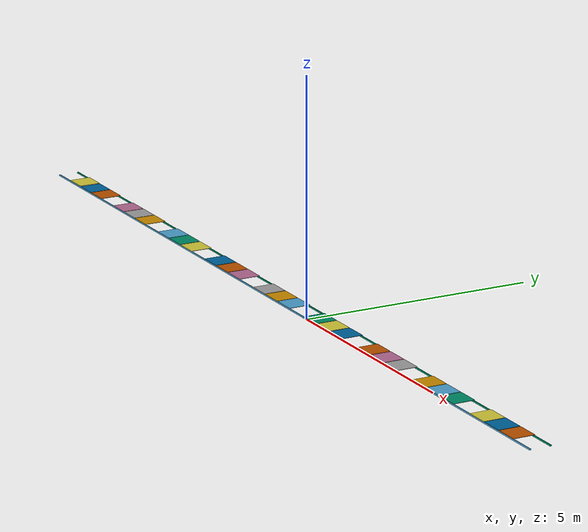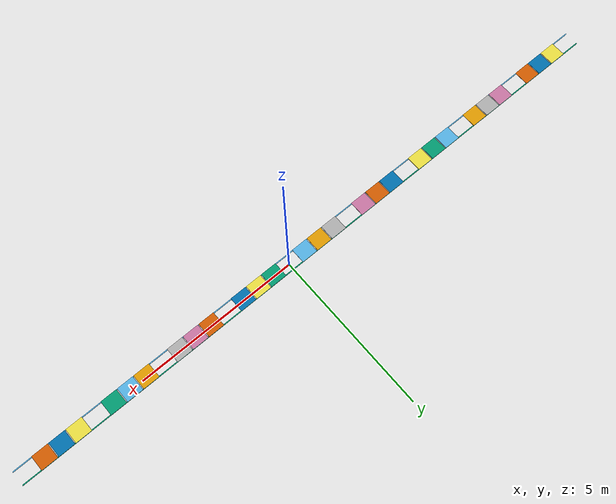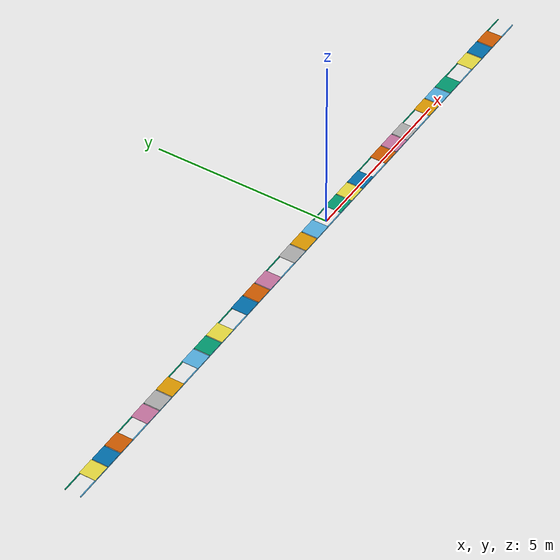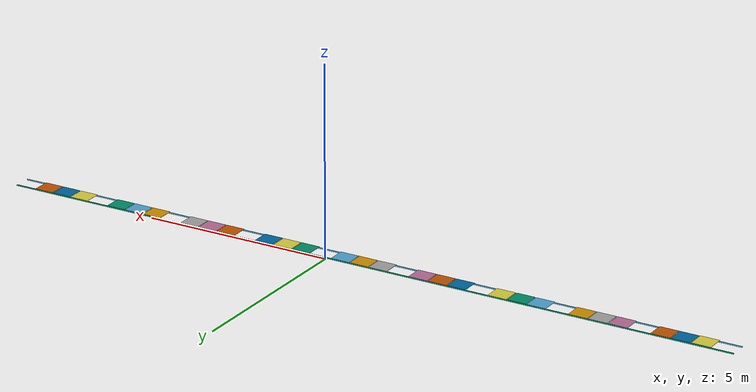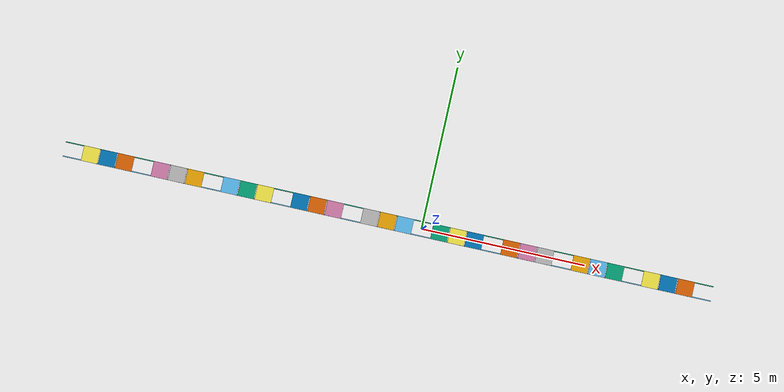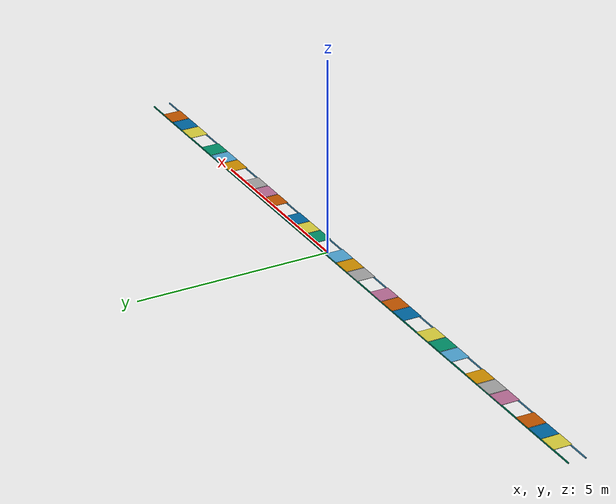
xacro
<?xml version="1.0"?>
<robot name="path1" xmlns:xacro="http://www.ros.org/wiki/xacro">

  <!-- A base link to anchor the model in the world -->

  <!-- Rod1 is considered the primary reference link. -->
  <!-- SDF pose for Rod1: (-1.075, -0.2175, 0.15) -->

  <link name="plane"/>

  <joint name="base_to_Rod1" type="fixed">
    <parent link="plane"/>
    <child link="Rod1"/>
    <origin xyz="-1.075 -0.2175 0.15" rpy="0 0 0"/>
  </joint>

  <link name="Rod1">
    <inertial>
      <origin xyz="0 0 0" rpy="0 0 0"/>
      <mass value="1"/>
      <inertia ixx="0.000104167" ixy="0" ixz="0" iyy="33.0009" iyz="0" izz="33.0009"/>
    </inertial>
    <visual>
      <origin xyz="0 0 0" rpy="0 0 0"/>
      <geometry>
        <box size="19.9 0.025 0.025"/>
      </geometry>
    </visual>
    <collision>
      <origin xyz="0 0 0" rpy="0 0 0"/>
      <geometry>
        <box size="19.9 0.025 0.025"/>
      </geometry>
    </collision>
  </link>

  <!-- Rod2 -->
  <!-- SDF pose: (-1.075, 0.2175, 0.15)
       Relative to Rod1: dx=0, dy=0.435, dz=0 -->
  <joint name="RodtoRod" type="fixed">
    <parent link="Rod1"/>
    <child link="Rod2"/>
    <origin xyz="0 0.435 0" rpy="0 0 0"/>
  </joint>

  <link name="Rod2">
    <inertial>
      <origin xyz="0 0 0" rpy="0 0 0"/>
      <mass value="1"/>
      <inertia ixx="0.000104167" ixy="0" ixz="0" iyy="33.0009" iyz="0" izz="33.0009"/>
    </inertial>
    <visual>
      <origin xyz="0 0 0" rpy="0 0 0"/>
      <geometry>
        <box size="19.9 0.025 0.025"/>
      </geometry>
    </visual>
    <collision>
      <origin xyz="0 0 0" rpy="0 0 0"/>
      <geometry>
        <box size="19.9 0.025 0.025"/>
      </geometry>
    </collision>
  </link>

  <!-- Common inertial/visual/collision properties for pathways -->
  <xacro:macro name="pathway_link" params="link_name">
    <link name="${link_name}">
      <inertial>
        <origin xyz="0 0 0" rpy="0 0 0"/>
        <mass value="0.1"/>
        <inertia ixx="0.00176417" ixy="0" ixz="0" iyy="0.00208417" iyz="0" izz="0.00384667"/>
      </inertial>
      <visual>
        <origin xyz="0 0 0" rpy="0 0 0"/>
        <geometry>
          <box size="0.5 0.46 0.01"/>
        </geometry>
      </visual>
      <collision>
        <origin xyz="0 0 0" rpy="0 0 0"/>
        <geometry>
          <box size="0.5 0.46 0.01"/>
        </geometry>
      </collision>
    </link>
  </xacro:macro>

  <!-- Rod1 position: (-1.075, -0.2175, 0.15) -->
  <!-- Each pathway_i: (X, Y, Z), joint origin = (X - (-1.075), Y - (-0.2175), Z - 0.15) -->

  <!-- pathway_1: (-10.2, 0, 0.18)
       dx=-9.125 dy=0.2175 dz=0.03 -->
  <xacro:pathway_link link_name="pathway_1"/>
  <joint name="PathtoRod11" type="fixed">
    <parent link="Rod1"/>
    <child link="pathway_1"/>
    <origin xyz="-9.125 0.2175 0.03" rpy="0 0 0"/>
  </joint>

  <!-- pathway_2: (-9.675,0,0.1725)
       dx=-8.6 dy=0.2175 dz=0.0225 -->
  <xacro:pathway_link link_name="pathway_2"/>
  <joint name="PathtoRod21" type="fixed">
    <parent link="Rod1"/>
    <child link="pathway_2"/>
    <origin xyz="-8.6 0.2175 0.0225" rpy="0 0 0"/>
  </joint>

  <!-- pathway_3: (-9.15,0,0.1725)
       dx=-8.075 dy=0.2175 dz=0.0225 -->
  <xacro:pathway_link link_name="pathway_3"/>
  <joint name="PathtoRod31" type="fixed">
    <parent link="Rod1"/>
    <child link="pathway_3"/>
    <origin xyz="-8.075 0.2175 0.0225" rpy="0 0 0"/>
  </joint>

  <!-- pathway_4: (-8.05,0,0.1725)
       dx=-6.975 dy=0.2175 dz=0.0225 -->
  <xacro:pathway_link link_name="pathway_4"/>
  <joint name="PathtoRod41" type="fixed">
    <parent link="Rod1"/>
    <child link="pathway_4"/>
    <origin xyz="-6.975 0.2175 0.0225" rpy="0 0 0"/>
  </joint>

  <!-- pathway_5: (-7.525,0,0.1725)
       dx=-6.45 dy=0.2175 dz=0.0225 -->
  <xacro:pathway_link link_name="pathway_5"/>
  <joint name="PathtoRod51" type="fixed">
    <parent link="Rod1"/>
    <child link="pathway_5"/>
    <origin xyz="-6.45 0.2175 0.0225" rpy="0 0 0"/>
  </joint>

  <!-- pathway_6: (-7.0,0,0.1725)
       dx=-5.925 dy=0.2175 dz=0.0225 -->
  <xacro:pathway_link link_name="pathway_6"/>
  <joint name="PathtoRod61" type="fixed">
    <parent link="Rod1"/>
    <child link="pathway_6"/>
    <origin xyz="-5.925 0.2175 0.0225" rpy="0 0 0"/>
  </joint>

  <!-- pathway_7: (-5.9,0,0.1725)
       dx=-4.825 dy=0.2175 dz=0.0225 -->
  <xacro:pathway_link link_name="pathway_7"/>
  <joint name="PathtoRod71" type="fixed">
    <parent link="Rod1"/>
    <child link="pathway_7"/>
    <origin xyz="-4.825 0.2175 0.0225" rpy="0 0 0"/>
  </joint>

  <!-- pathway_8: (-5.375,0,0.1725)
       dx=-4.3 dy=0.2175 dz=0.0225 -->
  <xacro:pathway_link link_name="pathway_8"/>
  <joint name="PathtoRod81" type="fixed">
    <parent link="Rod1"/>
    <child link="pathway_8"/>
    <origin xyz="-4.3 0.2175 0.0225" rpy="0 0 0"/>
  </joint>

  <!-- pathway_9: (-4.85,0,0.1725)
       dx=-3.775 dy=0.2175 dz=0.0225 -->
  <xacro:pathway_link link_name="pathway_9"/>
  <joint name="PathtoRod91" type="fixed">
    <parent link="Rod1"/>
    <child link="pathway_9"/>
    <origin xyz="-3.775 0.2175 0.0225" rpy="0 0 0"/>
  </joint>

  <!-- pathway_10: (-3.75,0,0.1725)
       dx=-2.675 dy=0.2175 dz=0.0225 -->
  <xacro:pathway_link link_name="pathway_10"/>
  <joint name="PathtoRod101" type="fixed">
    <parent link="Rod1"/>
    <child link="pathway_10"/>
    <origin xyz="-2.675 0.2175 0.0225" rpy="0 0 0"/>
  </joint>

  <!-- pathway_11: (-3.225,0,0.1725)
       dx=-2.15 dy=0.2175 dz=0.0225 -->
  <xacro:pathway_link link_name="pathway_11"/>
  <joint name="PathtoRod111" type="fixed">
    <parent link="Rod1"/>
    <child link="pathway_11"/>
    <origin xyz="-2.15 0.2175 0.0225" rpy="0 0 0"/>
  </joint>

  <!-- pathway_12: (-2.7,0,0.1725)
       dx=-1.625 dy=0.2175 dz=0.0225 -->
  <xacro:pathway_link link_name="pathway_12"/>
  <joint name="PathtoRod121" type="fixed">
    <parent link="Rod1"/>
    <child link="pathway_12"/>
    <origin xyz="-1.625 0.2175 0.0225" rpy="0 0 0"/>
  </joint>

  <!-- pathway_13: (-1.6,0,0.1725)
       dx=-0.525 dy=0.2175 dz=0.0225 -->
  <xacro:pathway_link link_name="pathway_13"/>
  <joint name="PathtoRod131" type="fixed">
    <parent link="Rod1"/>
    <child link="pathway_13"/>
    <origin xyz="-0.525 0.2175 0.0225" rpy="0 0 0"/>
  </joint>

  <!-- pathway_14: (-1.075,0,0.1725)
       dx=0 dy=0.2175 dz=0.0225 -->
  <xacro:pathway_link link_name="pathway_14"/>
  <joint name="PathtoRod141" type="fixed">
    <parent link="Rod1"/>
    <child link="pathway_14"/>
    <origin xyz="0 0.2175 0.0225" rpy="0 0 0"/>
  </joint>

  <!-- pathway_15: (-0.55,0,0.1725)
       dx=0.525 dy=0.2175 dz=0.0225 -->
  <xacro:pathway_link link_name="pathway_15"/>
  <joint name="PathtoRod151" type="fixed">
    <parent link="Rod1"/>
    <child link="pathway_15"/>
    <origin xyz="0.525 0.2175 0.0225" rpy="0 0 0"/>
  </joint>

  <!-- pathway_16: (0.55,0,0.1725)
       dx=1.625 dy=0.2175 dz=0.0225 -->
  <xacro:pathway_link link_name="pathway_16"/>
  <joint name="PathtoRod161" type="fixed">
    <parent link="Rod1"/>
    <child link="pathway_16"/>
    <origin xyz="1.625 0.2175 0.0225" rpy="0 0 0"/>
  </joint>

  <!-- pathway_17: (1.075,0,0.1725)
       dx=2.15 dy=0.2175 dz=0.0225 -->
  <xacro:pathway_link link_name="pathway_17"/>
  <joint name="PathtoRod171" type="fixed">
    <parent link="Rod1"/>
    <child link="pathway_17"/>
    <origin xyz="2.15 0.2175 0.0225" rpy="0 0 0"/>
  </joint>

  <!-- pathway_18: (1.6,0,0.1725)
       dx=2.675 dy=0.2175 dz=0.0225 -->
  <xacro:pathway_link link_name="pathway_18"/>
  <joint name="PathtoRod181" type="fixed">
    <parent link="Rod1"/>
    <child link="pathway_18"/>
    <origin xyz="2.675 0.2175 0.0225" rpy="0 0 0"/>
  </joint>

  <!-- pathway_19: (2.7,0,0.1725)
       dx=3.775 dy=0.2175 dz=0.0225 -->
  <xacro:pathway_link link_name="pathh_19"/>
  <joint name="pathhtorodd191" type="fixed">
    <parent link="Rod1"/>
    <child link="pathh_19"/>
    <origin xyz="3.775 0.2175 0.0225" rpy="0 0 0"/>
  </joint>

  <!-- pathway_20: (3.225,0,0.1725)
       dx=4.3 dy=0.2175 dz=0.0225 -->
  <xacro:pathway_link link_name="pathway_20"/>
  <joint name="PathtoRod201" type="fixed">
    <parent link="Rod1"/>
    <child link="pathway_20"/>
    <origin xyz="4.3 0.2175 0.0225" rpy="0 0 0"/>
  </joint>

  <!-- pathway_21: (3.75,0,0.1725)
       dx=4.825 dy=0.2175 dz=0.0225 -->
  <xacro:pathway_link link_name="pathway_21"/>
  <joint name="PathtoRod211" type="fixed">
    <parent link="Rod1"/>
    <child link="pathway_21"/>
    <origin xyz="4.825 0.2175 0.0225" rpy="0 0 0"/>
  </joint>

  <!-- pathway_22: (4.85,0,0.1725)
       dx=5.925 dy=0.2175 dz=0.0225 -->
  <xacro:pathway_link link_name="pathway_22"/>
  <joint name="PathtoRod221" type="fixed">
    <parent link="Rod1"/>
    <child link="pathway_22"/>
    <origin xyz="5.925 0.2175 0.0225" rpy="0 0 0"/>
  </joint>

  <!-- pathway_23: (5.375,0,0.1725)
       dx=6.45 dy=0.2175 dz=0.0225 -->
  <xacro:pathway_link link_name="pathway_23"/>
  <joint name="PathtoRod231" type="fixed">
    <parent link="Rod1"/>
    <child link="pathway_23"/>
    <origin xyz="6.45 0.2175 0.0225" rpy="0 0 0"/>
  </joint>

  <!-- pathway_24: (5.9,0,0.1725)
       dx=6.975 dy=0.2175 dz=0.0225 -->
  <xacro:pathway_link link_name="pathway_24"/>
  <joint name="PathtoRod241" type="fixed">
    <parent link="Rod1"/>
    <child link="pathway_24"/>
    <origin xyz="6.975 0.2175 0.0225" rpy="0 0 0"/>
  </joint>

  <!-- pathway_25: (7.0,0,0.1725)
       dx=8.075 dy=0.2175 dz=0.0225 -->
  <xacro:pathway_link link_name="pathway_25"/>
  <joint name="PathtoRod251" type="fixed">
    <parent link="Rod1"/>
    <child link="pathway_25"/>
    <origin xyz="8.075 0.2175 0.0225" rpy="0 0 0"/>
  </joint>

  <!-- pathway_26: (7.525,0,0.1725)
       dx=8.6 dy=0.2175 dz=0.0225 -->
  <xacro:pathway_link link_name="pathway_26"/>
  <joint name="PathtoRod261" type="fixed">
    <parent link="Rod1"/>
    <child link="pathway_26"/>
    <origin xyz="8.6 0.2175 0.0225" rpy="0 0 0"/>
  </joint>

  <!-- pathway_27: (8.05,0,0.1725)
       dx=9.125 dy=0.2175 dz=0.0225 -->
  <xacro:pathway_link link_name="pathway_27"/>
  <joint name="PathtoRod271" type="fixed">
    <parent link="Rod1"/>
    <child link="pathway_27"/>
    <origin xyz="9.125 0.2175 0.0225" rpy="0 0 0"/>
  </joint>

</robot>
